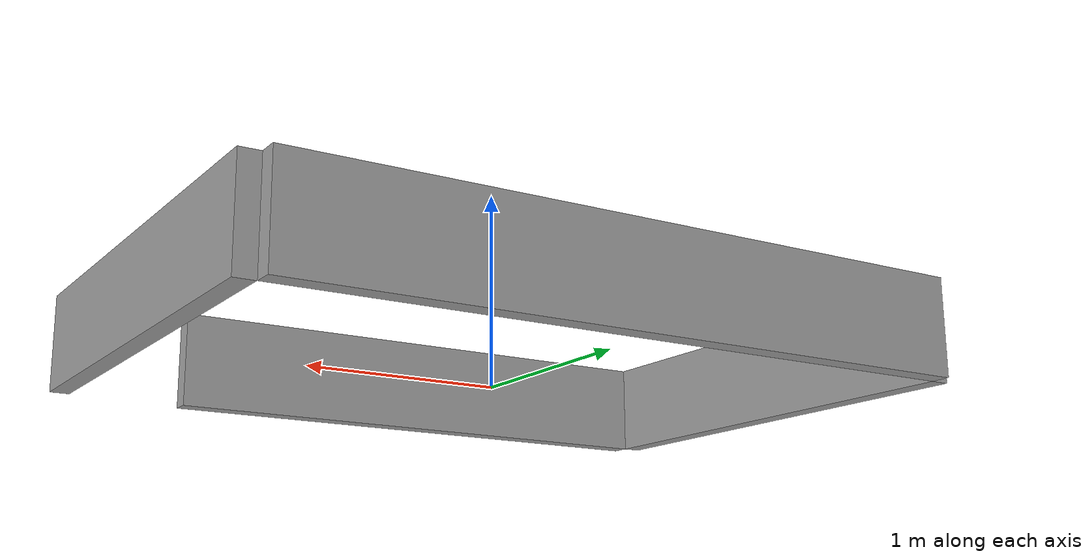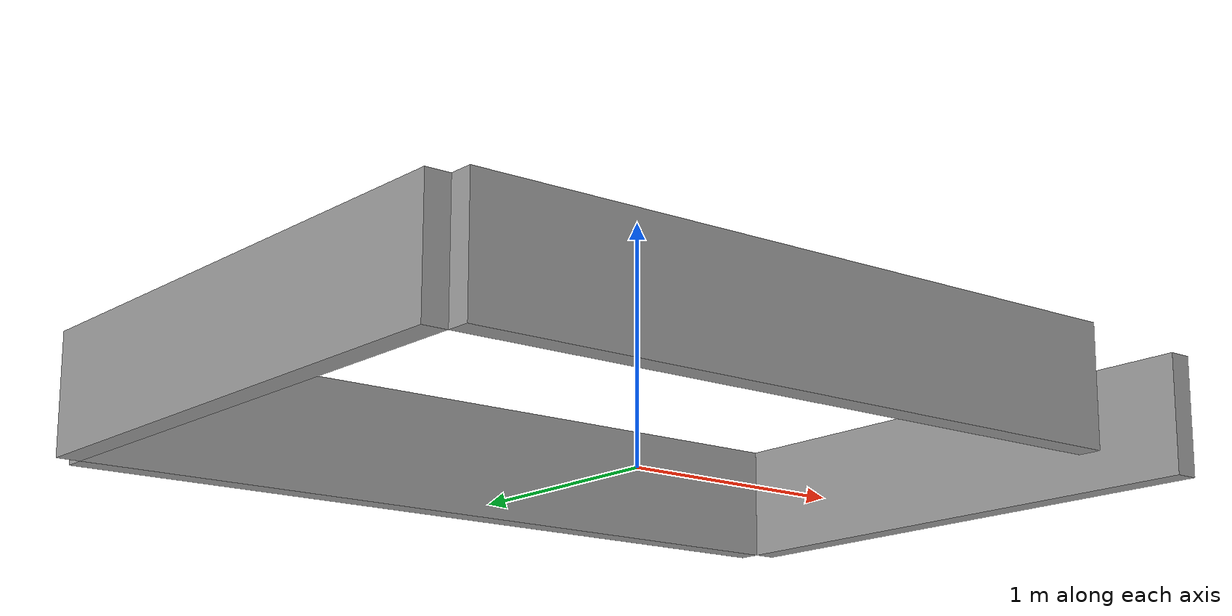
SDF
<?xml version='1.0'?>
<sdf version='1.7'>
  <model name='hri_demo'>
    <pose>0 0 0 0 -0 0</pose>
    <link name='Wall_0'>
      <collision name='Wall_0_Collision'>
        <geometry>
          <box>
            <size>2.5 0.1 0.5</size>
          </box>
        </geometry>
        <pose>0 0 0.25 0 -0 0</pose>
      </collision>
      <visual name='Wall_0_Visual'>
        <pose>0 0 0.25 0 -0 0</pose>
        <geometry>
          <box>
            <size>2.5 0.1 0.5</size>
          </box>
        </geometry>
        <material>
          <script>
            <uri>file://media/materials/scripts/gazebo.material</uri>
            <name>Gazebo/Grey</name>
          </script>
          <ambient>1 1 1 1</ambient>
        </material>
        <meta>
          <layer>0</layer>
        </meta>
      </visual>
      <pose>-1.8 0 0 0 -0 1.5708</pose>
    </link>
    <link name='Wall_2'>
      <collision name='Wall_2_Collision'>
        <geometry>
          <box>
            <size>2.5 0.1 0.5</size>
          </box>
        </geometry>
        <pose>0 0 0.25 0 -0 0</pose>
      </collision>
      <visual name='Wall_2_Visual'>
        <pose>0 0 0.25 0 -0 0</pose>
        <geometry>
          <box>
            <size>2.5 0.1 0.5</size>
          </box>
        </geometry>
        <material>
          <script>
            <uri>file://media/materials/scripts/gazebo.material</uri>
            <name>Gazebo/Grey</name>
          </script>
          <ambient>1 1 1 1</ambient>
        </material>
        <meta>
          <layer>0</layer>
        </meta>
      </visual>
      <pose>1.8 0 0 0 -0 1.5708</pose>
    </link>
    <link name='Wall_6'>
      <collision name='Wall_6_Collision'>
        <geometry>
          <box>
            <size>3.499 0.1 0.5</size>
          </box>
        </geometry>
        <pose>0 0 0.25 0 -0 0</pose>
      </collision>
      <visual name='Wall_6_Visual'>
        <pose>0 0 0.25 0 -0 0</pose>
        <geometry>
          <box>
            <size>3.499 0.1 0.5</size>
          </box>
        </geometry>
        <material>
          <script>
            <uri>file://media/materials/scripts/gazebo.material</uri>
            <name>Gazebo/Grey</name>
          </script>
          <ambient>1 1 1 1</ambient>
        </material>
        <meta>
          <layer>0</layer>
        </meta>
      </visual>
      <pose>0.0005 1.3 0 0 -0 3.14159</pose>
    </link>
    <link name='Wall_8'>
      <collision name='Wall_8_Collision'>
        <geometry>
          <box>
            <size>2.9 0.1 0.5</size>
          </box>
        </geometry>
        <pose>0 0 0.25 0 -0 0</pose>
      </collision>
      <visual name='Wall_8_Visual'>
        <pose>0 0 0.25 0 -0 0</pose>
        <geometry>
          <box>
            <size>2.9 0.1 0.5</size>
          </box>
        </geometry>
        <material>
          <script>
            <uri>file://media/materials/scripts/gazebo.material</uri>
            <name>Gazebo/Grey</name>
          </script>
          <ambient>1 1 1 1</ambient>
        </material>
        <meta>
          <layer>0</layer>
        </meta>
      </visual>
      <pose>-0.3 -1.3 0 0 -0 3.14159</pose>
    </link>
    <static>1</static>
  </model>
</sdf>
